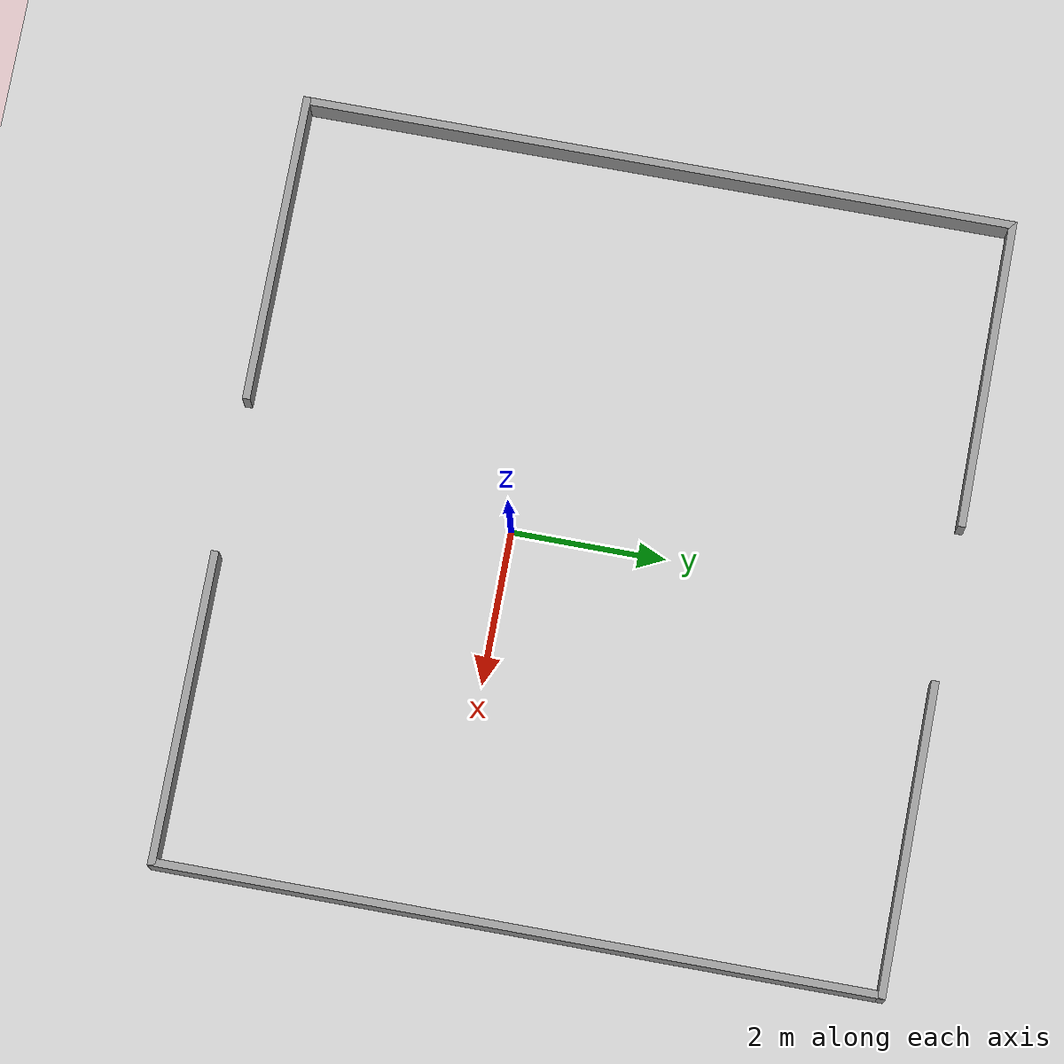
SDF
<?xml version="1.0" ?>
<sdf version="1.4">
  <world name="default">
    <!-- A global light source -->
    <include>
      <uri>model://sun</uri>
    </include>
    <!-- A ground plane -->
    <include>
      <uri>model://ground_plane</uri>
    </include>
    <!-- Own physics settings to speed up simulation -->
    <physics type='ode'>
      <max_step_size>0.01</max_step_size>
      <real_time_factor>1</real_time_factor>
      <real_time_update_rate>100</real_time_update_rate>
      <gravity>0 0 -9.8</gravity>
    </physics>

    <!-- Boundary fence for spheres with passages for the robot (Scaled x2) -->
    <model name="sphere_fence">
      <static>true</static>
      <link name="link">
        <!-- North wall Left -->
        <collision name="north_left">
          <pose>-3.025 5.6 0.25 0 0 0</pose>
          <geometry><box><size>4.05 0.1 0.5</size></box></geometry>
        </collision>
        <visual name="north_left_visual">
          <pose>-3.025 5.6 0.25 0 0 0</pose>
          <geometry><box><size>4.05 0.1 0.5</size></box></geometry>
          <material><script><uri>file://media/materials/scripts/gazebo.material</uri><name>Gazebo/Grey</name></script></material>
        </visual>

        <!-- North wall Right -->
        <collision name="north_right">
          <pose>3.025 5.6 0.25 0 0 0</pose>
          <geometry><box><size>4.05 0.1 0.5</size></box></geometry>
        </collision>
        <visual name="north_right_visual">
          <pose>3.025 5.6 0.25 0 0 0</pose>
          <geometry><box><size>4.05 0.1 0.5</size></box></geometry>
          <material><script><uri>file://media/materials/scripts/gazebo.material</uri><name>Gazebo/Grey</name></script></material>
        </visual>

        <!-- South wall Left -->
        <collision name="south_left">
          <pose>-3.025 -3.6 0.25 0 0 0</pose>
          <geometry><box><size>4.05 0.1 0.5</size></box></geometry>
        </collision>
        <visual name="south_left_visual">
          <pose>-3.025 -3.6 0.25 0 0 0</pose>
          <geometry><box><size>4.05 0.1 0.5</size></box></geometry>
          <material><script><uri>file://media/materials/scripts/gazebo.material</uri><name>Gazebo/Grey</name></script></material>
        </visual>

        <!-- South wall Right -->
        <collision name="south_right">
          <pose>3.025 -3.6 0.25 0 0 0</pose>
          <geometry><box><size>4.05 0.1 0.5</size></box></geometry>
        </collision>
        <visual name="south_right_visual">
          <pose>3.025 -3.6 0.25 0 0 0</pose>
          <geometry><box><size>4.05 0.1 0.5</size></box></geometry>
          <material><script><uri>file://media/materials/scripts/gazebo.material</uri><name>Gazebo/Grey</name></script></material>
        </visual>

        <!-- East wall -->
        <collision name="east">
          <pose>5.0 1.0 0.25 0 0 0</pose>
          <geometry><box><size>0.1 9.3 0.5</size></box></geometry>
        </collision>
        <visual name="east_visual">
          <pose>5.0 1.0 0.25 0 0 0</pose>
          <geometry><box><size>0.1 9.3 0.5</size></box></geometry>
          <material><script><uri>file://media/materials/scripts/gazebo.material</uri><name>Gazebo/Grey</name></script></material>
        </visual>

        <!-- West wall -->
        <collision name="west">
          <pose>-5.0 1.0 0.25 0 0 0</pose>
          <geometry><box><size>0.1 9.3 0.5</size></box></geometry>
        </collision>
        <visual name="west_visual">
          <pose>-5.0 1.0 0.25 0 0 0</pose>
          <geometry><box><size>0.1 9.3 0.5</size></box></geometry>
          <material><script><uri>file://media/materials/scripts/gazebo.material</uri><name>Gazebo/Grey</name></script></material>
        </visual>
      </link>
    </model>

  </world>
</sdf>
